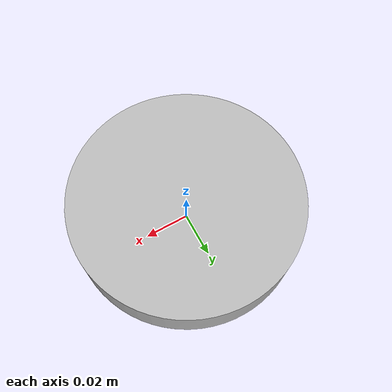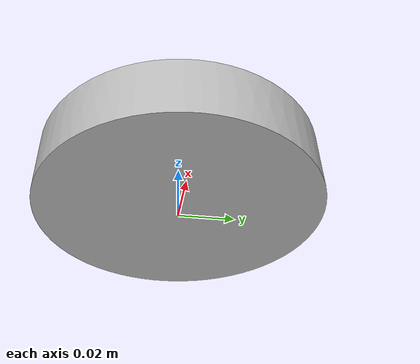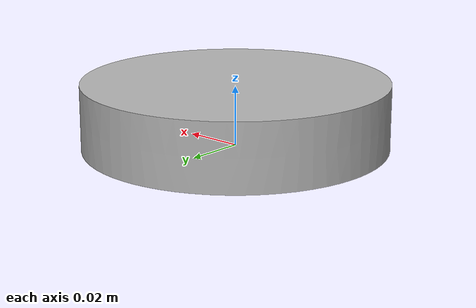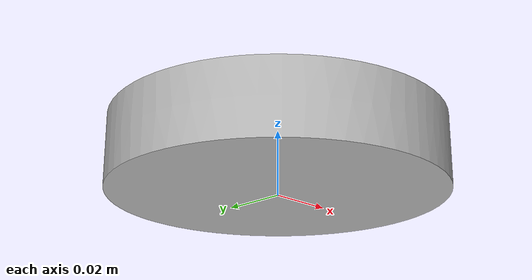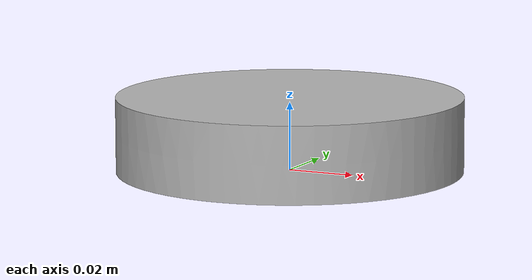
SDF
<?xml version='1.0'?>
<sdf version='1.6'>
  <model name='omni_wheel'>
    <link name='omni_wheel'>
      <inertial>
        <mass>0.1</mass>
        <inertia>
          <ixx>0.17</ixx>
          <ixy>0.00</ixy>
          <ixz>0.00</ixz>
          <iyy>0.17</iyy>
          <iyz>0.00</iyz>
          <izz>0.17</izz>
        </inertia>
      </inertial>
      <pose frame=''>0 0 0 0 -0 0</pose>
      <visual name='visual'>
        <pose frame=''>0 0 0 0 -0 0</pose>
        <geometry>
          <mesh>
            <uri>model://laser_robot/omni_wheel/meshes/roda_omni.obj</uri>
            <scale>1 1 1</scale>
          </mesh>
        </geometry>
        <transparency>0</transparency>
        <cast_shadows>1</cast_shadows>
      </visual>
      <collision name='collision'>
        <laser_retro>0</laser_retro>
        <max_contacts>10</max_contacts>
        <pose frame=''>0 0 0.05 0 -0 0</pose>
        <geometry>
          <mesh>
            <uri>model://laser_robot/omni_wheel/meshes/roda_omni.obj</uri>
            <scale>1 1 1</scale>
          </mesh>
        </geometry>
        <surface>
          <friction>
            <ode>
              <mu>1</mu>
              <mu2>1</mu2>
              <fdir1>0 0 0</fdir1>
              <slip1>0</slip1>
              <slip2>0</slip2>
            </ode>
            <torsional>
              <coefficient>1</coefficient>
              <patch_radius>1</patch_radius>
              <surface_radius>1</surface_radius>
              <use_patch_radius>1</use_patch_radius>
              <ode>
                <slip>0</slip>
              </ode>
            </torsional>
          </friction>
          <bounce>
            <restitution_coefficient>1</restitution_coefficient>
            <threshold>1e+06</threshold>
          </bounce>
          <contact>
            <collide_without_contact>0</collide_without_contact>
            <collide_without_contact_bitmask>1</collide_without_contact_bitmask>
            <collide_bitmask>1</collide_bitmask>
            <ode>
              <soft_cfm>0</soft_cfm>
              <soft_erp>0.2</soft_erp>
              <kp>1e+13</kp>
              <kd>1</kd>
              <max_vel>0.01</max_vel>
              <min_depth>0</min_depth>
            </ode>
            <bullet>
              <split_impulse>1</split_impulse>
              <split_impulse_penetration_threshold>-0.01</split_impulse_penetration_threshold>
              <soft_cfm>0</soft_cfm>
              <soft_erp>0.2</soft_erp>
              <kp>1e+13</kp>
              <kd>1</kd>
            </bullet>
          </contact>
        </surface>
      </collision>
    </link>
    <static>0</static>
    <allow_auto_disable>1</allow_auto_disable>
  </model>
</sdf>
